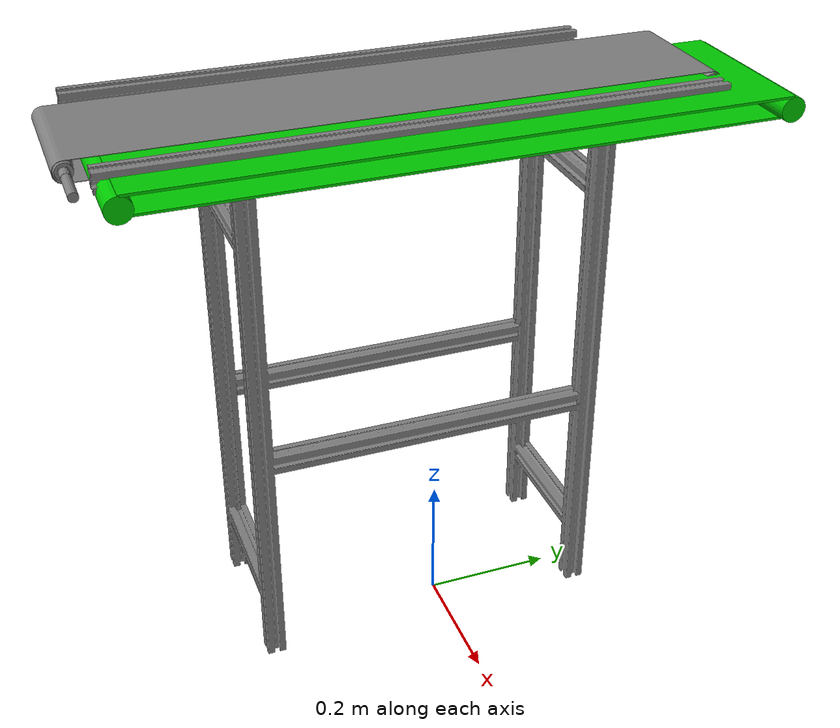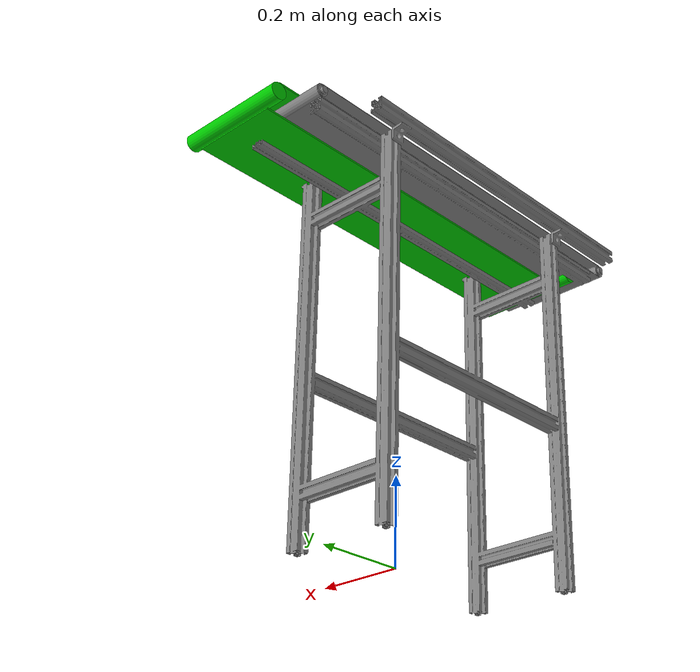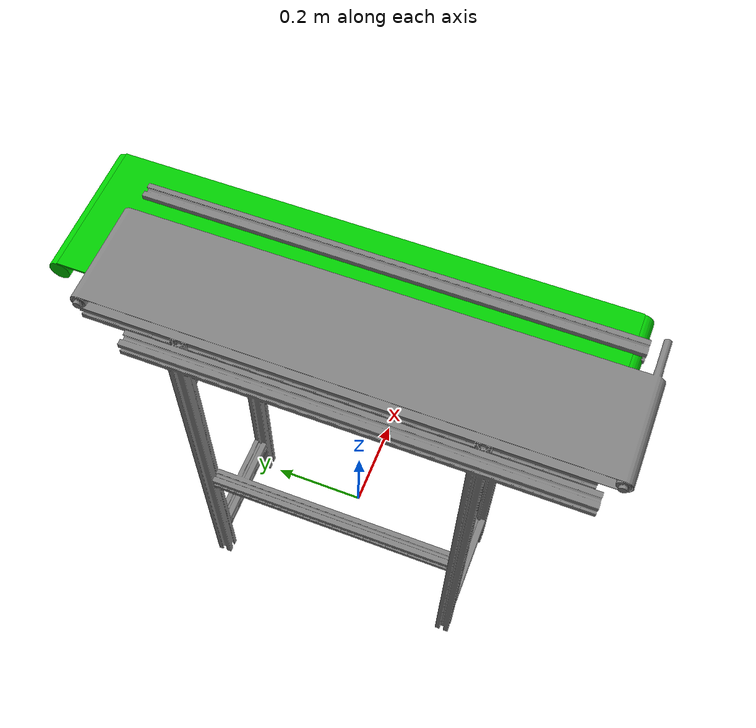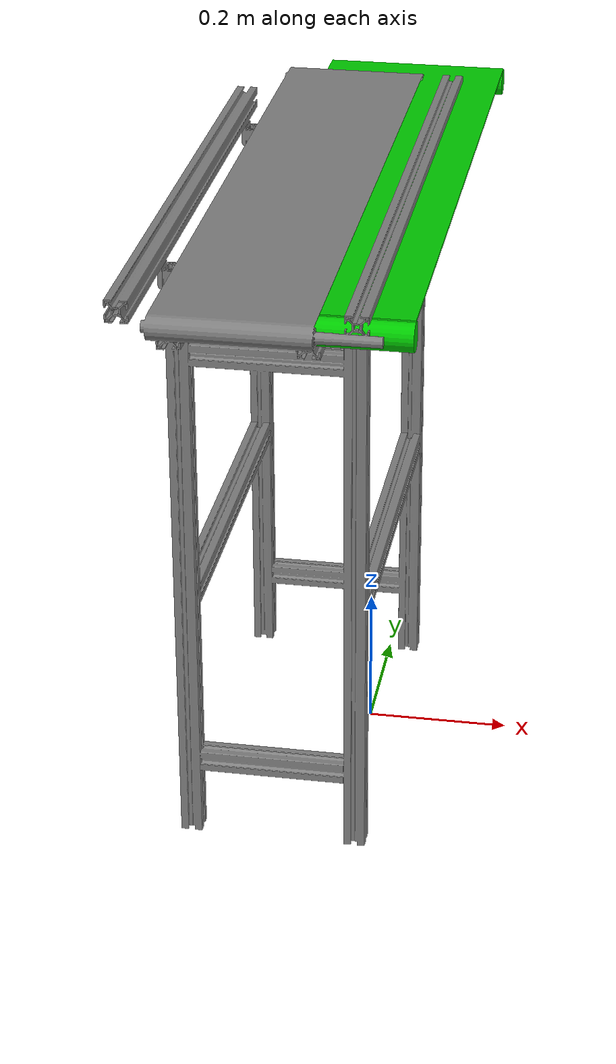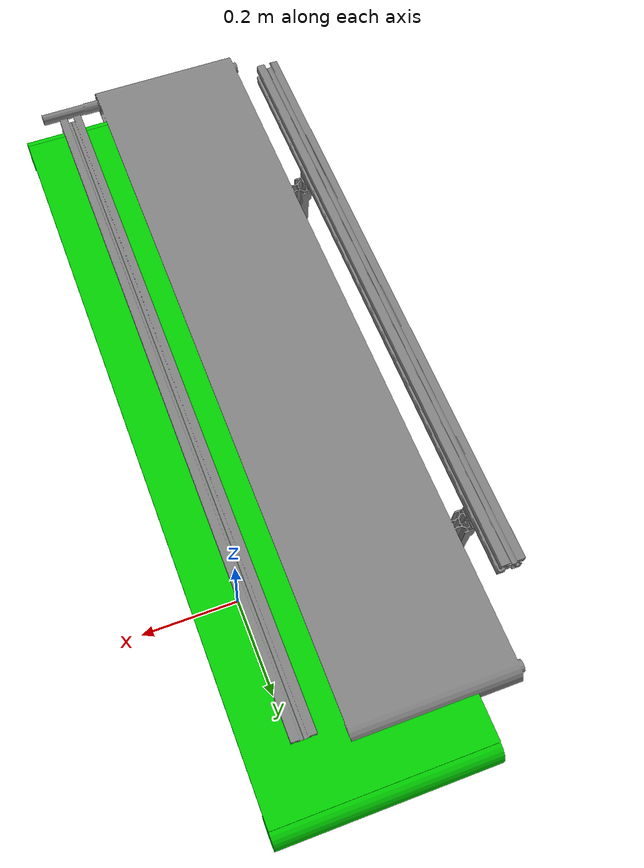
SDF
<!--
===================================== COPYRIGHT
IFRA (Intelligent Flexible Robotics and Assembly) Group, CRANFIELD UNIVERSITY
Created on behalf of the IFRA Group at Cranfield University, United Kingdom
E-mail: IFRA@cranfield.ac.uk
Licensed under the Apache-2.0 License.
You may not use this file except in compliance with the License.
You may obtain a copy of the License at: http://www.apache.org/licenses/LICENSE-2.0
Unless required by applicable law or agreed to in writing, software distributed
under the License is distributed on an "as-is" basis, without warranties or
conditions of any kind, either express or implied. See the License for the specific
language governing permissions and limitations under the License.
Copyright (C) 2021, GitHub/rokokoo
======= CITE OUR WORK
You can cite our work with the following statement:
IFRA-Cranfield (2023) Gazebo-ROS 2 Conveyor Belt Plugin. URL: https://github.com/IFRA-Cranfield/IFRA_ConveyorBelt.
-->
<?xml version="1.0" ?>

<sdf version="1.9">

  <model name="conveyor">

    <static>false</static>

    <link name="belt_fixed">

      <kinematic>true</kinematic>
      <gravity>false</gravity>

      <visual name="belt_fixed_visual">
        <!-- STL mm cinsinden; scale 0.001 ile metreye cevirilir.
             Pose offset mesh'i model origin'ine (XY) hizalar. -->
        <pose>-0.7422 -0.0966 0 0 0 0</pose>
        <geometry>
          <mesh>
            <uri>model://conveyorbelt_gz/meshes/objects/conveyorbelt.stl</uri>
            <scale>0.001 0.001 0.001</scale>
          </mesh>
        </geometry>
        <material>
          <ambient>0.5 0.5 0.5 1</ambient>
          <diffuse>0.5 0.5 0.5 1</diffuse>
          <specular>0.2 0.2 0.2 1</specular>
        </material>
      </visual>

      <collision name="belt_fixed_collision">
        <!-- Konveyor govdesinin box yaklasimi (W x D x H metre) -->
        <pose>0 0 0.4428 0 0 0</pose>
        <geometry>
          <box><size>0.3584 0.9689 0.8</size></box>
        </geometry>
      </collision>

    </link>

    <link name="belt_moving">

      <!-- STL bant yuzeyi: Z=843.4mm -> 0.8434m -->
      <pose>0 0 0.8434 0 0 0</pose>

      <inertial>
        <mass>100.0</mass>
        <inertia>
          <ixx>1e-6</ixx><ixy>0</ixy><ixz>0</ixz>
          <iyy>1e-6</iyy><iyz>0</iyz>
          <izz>1e-6</izz>
        </inertia>
      </inertial>

      <collision name="belt_moving_collision">
        <!-- Gercek bant alani: 0.2783 x 0.9522 m -->
        <pose>-0.0105 0.0184 0 0 0 0</pose>
        <geometry>
          <box><size>0.2783 0.9522 0.001</size></box>
        </geometry>
        <surface>
          <contact/>
          <friction>
            <ode>
              <mu>100.0</mu>
              <mu2>100.0</mu2>
            </ode>
            <torsional>
              <coefficient>1000.0</coefficient>
              <patch_radius>0.1</patch_radius>
            </torsional>
          </friction>
        </surface>
      </collision>

      <!-- Ust bant yüzeyi (hareket eder) -->
      <!-- STL bant alani: genislik=0.2783m, uzunluk=0.9522m -->
      <!-- Merkez offset: X=-0.0105, Y=+0.0184 (STL'ye gore) -->
      <visual name="belt_top_visual">
        <pose>-0.0105 0.0184 0 0 0 0</pose>
        <geometry>
          <box><size>0.26 0.9522 0.004</size></box>
        </geometry>
        <material>
          <ambient>0.0 0.6 0.0 1</ambient>
          <diffuse>0.0 0.8 0.0 1</diffuse>
          <specular>0.1 0.3 0.1 1</specular>
        </material>
      </visual>

      <!-- Alt donus seridi: STL downward surface Z=819.8mm -> local Z=-0.0236m -->
      <visual name="belt_bottom_visual">
        <pose>-0.002 0.018 -0.038 0 0 0</pose>
        <geometry>
          <box><size>0.200 0.9444 0.004</size></box>
        </geometry>
        <material>
          <ambient>0.0 0.6 0.0 1</ambient>
          <diffuse>0.0 0.8 0.0 1</diffuse>
          <specular>0.1 0.3 0.1 1</specular>
        </material>
      </visual>

      <!-- On tamburlu rulman: yaricap=0.019m, X ekseni boyunca uzanir -->
      <!-- RPY=(0, pi/2, 0) -> silindiri Z'den X eksenine dondurur -->
      <visual name="belt_drum_front_visual">
        <pose>-0.0105 0.4945 -0.019 0 1.5708 0</pose>
        <geometry>
          <cylinder>
            <radius>0.019</radius>
            <length>0.26</length>
          </cylinder>
        </geometry>
        <material>
          <ambient>0.0 0.6 0.0 1</ambient>
          <diffuse>0.0 0.8 0.0 1</diffuse>
          <specular>0.1 0.3 0.1 1</specular>
        </material>
      </visual>

      <!-- Arka tamburlu rulman: yaricap=0.019m -->
      <visual name="belt_drum_back_visual">
        <pose>-0.0105 -0.4577 -0.019 0 1.5708 0</pose>
        <geometry>
          <cylinder>
            <radius>0.019</radius>
            <length>0.26</length>
          </cylinder>
        </geometry>
        <material>
          <ambient>0.0 0.6 0.0 1</ambient>
          <diffuse>0.0 0.8 0.0 1</diffuse>
          <specular>0.1 0.3 0.1 1</specular>
        </material>
      </visual>

    </link>

    <!-- FIX THE CONVEYOR -->
    <joint name="CB_fixed" type="fixed">
      <parent>world</parent>
      <child>belt_fixed</child>
    </joint>

    <!-- CONVEYORBELT JOINT -->
    <joint name="belt_joint" type="prismatic">

      <parent>belt_fixed</parent>
      <child>belt_moving</child>

      <axis>
        <xyz>0 1 0</xyz>
        <limit>
          <lower>0.0</lower>
          <upper>0.01</upper>
          <effort>1e8</effort>
          <velocity>10.0</velocity>
        </limit>
        <dynamics>
          <damping>1.0</damping>
          <friction>0.0</friction>
        </dynamics>
      </axis>

    </joint>

    <!-- Fortress System plugin -->

    <plugin name="ros2_conveyorbelt_system" filename="libros2gz_conveyorbelt_system.so">
      <max_velocity>1.0</max_velocity>
      <publish_rate>1000</publish_rate>
      <joint_name>belt_joint</joint_name>
      <lower_limit>0.0</lower_limit>
      <upper_limit>0.01</upper_limit>
    </plugin>

  </model>

</sdf>
